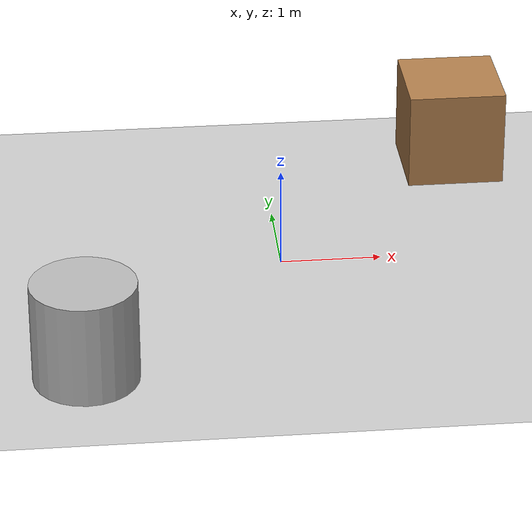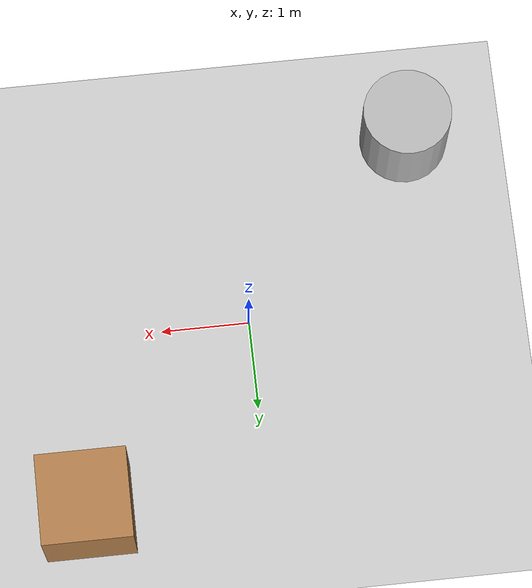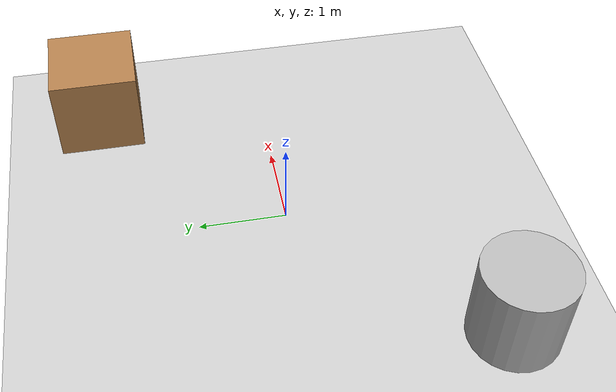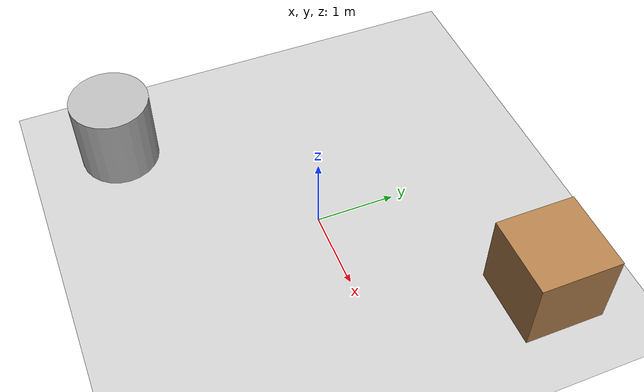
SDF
<?xml version="1.0" ?>
<sdf version="1.5">
  <world name="underwater">
    <!-- A global light source -->
    <include>
      <uri>model://sun</uri>
    </include>

    <!-- Underwater environment properties -->
    <scene>
      <ambient>0.0 0.0 0.5 1.0</ambient>
      <background>0.0 0.0 0.7 1.0</background>
      <shadows>false</shadows>
    </scene>

    <!-- Underwater physics -->
    <physics name="default_physics" default="true" type="ode">
      <max_step_size>0.001</max_step_size>
      <real_time_factor>1</real_time_factor>
      <real_time_update_rate>1000</real_time_update_rate>
      <gravity>0 0 -9.8</gravity>
      <ode>
        <solver>
          <type>quick</type>
          <iters>50</iters>
          <sor>1.4</sor>
        </solver>
      </ode>
    </physics>

    <!-- Add a seafloor -->
    <model name="seafloor">
      <static>true</static>
      <link name="seafloor_link">
        <collision name="seafloor_collision">
          <geometry>
            <plane>
              <normal>0 0 1</normal>
              <size>100 100</size>
            </plane>
          </geometry>
          <surface>
            <friction>
              <ode>
                <mu>100</mu>
                <mu2>50</mu2>
              </ode>
            </friction>
          </surface>
        </collision>
        <visual name="seafloor_visual">
          <cast_shadows>false</cast_shadows>
          <geometry>
            <plane>
              <normal>0 0 1</normal>
              <size>100 100</size>
            </plane>
          </geometry>
          <material>
            <script>
              <uri>file://media/materials/scripts/gazebo.material</uri>
              <name>Gazebo/Sand</name>
            </script>
          </material>
        </visual>
      </link>
    </model>

    <!-- Add some underwater objects -->
    <model name="box1">
      <static>true</static>
      <pose>2 2 0.5 0 0 0</pose>
      <link name="link">
        <collision name="collision">
          <geometry>
            <box>
              <size>1 1 1</size>
            </box>
          </geometry>
        </collision>
        <visual name="visual">
          <geometry>
            <box>
              <size>1 1 1</size>
            </box>
          </geometry>
          <material>
            <script>
              <uri>file://media/materials/scripts/gazebo.material</uri>
              <name>Gazebo/Wood</name>
            </script>
          </material>
        </visual>
      </link>
    </model>

    <model name="cylinder1">
      <static>true</static>
      <pose>-2 -2 0.5 0 0 0</pose>
      <link name="link">
        <collision name="collision">
          <geometry>
            <cylinder>
              <radius>0.5</radius>
              <length>1</length>
            </cylinder>
          </geometry>
        </collision>
        <visual name="visual">
          <geometry>
            <cylinder>
              <radius>0.5</radius>
              <length>1</length>
            </cylinder>
          </geometry>
          <material>
            <script>
              <uri>file://media/materials/scripts/gazebo.material</uri>
              <name>Gazebo/Coral</name>
            </script>
          </material>
        </visual>
      </link>
    </model>

    <!-- Underwater current plugin -->
    <plugin name="underwater_current" filename="libUnderwaterCurrentPlugin.so">
      <namespace>underwater_current</namespace>
      <constant_current>
        <topic>current_velocity</topic>
        <velocity>
          <mean>0.05</mean>
          <min>0</min>
          <max>0.1</max>
          <mu>0.0</mu>
          <noiseAmp>0.0</noiseAmp>
        </velocity>
        <horizontal_angle>
          <mean>0</mean>
          <min>-1.5707</min>
          <max>1.5707</max>
          <mu>0.0</mu>
          <noiseAmp>0.0</noiseAmp>
        </horizontal_angle>
        <vertical_angle>
          <mean>0</mean>
          <min>-0.1</min>
          <max>0.1</max>
          <mu>0.0</mu>
          <noiseAmp>0.0</noiseAmp>
        </vertical_angle>
      </constant_current>
    </plugin>

  </world>
</sdf>
